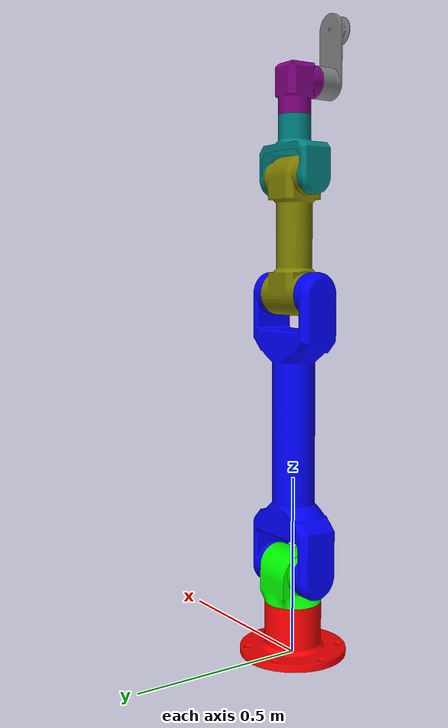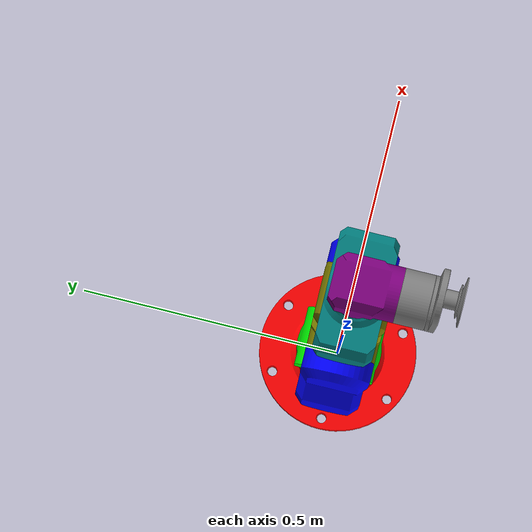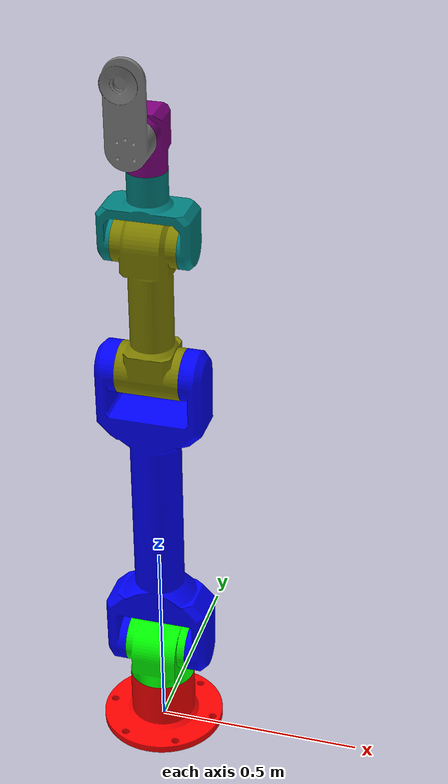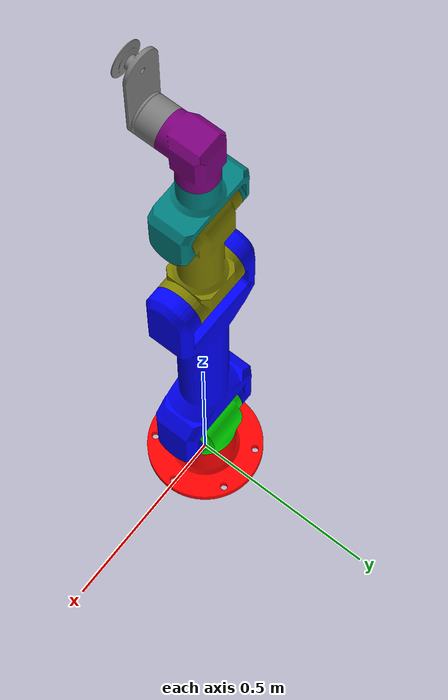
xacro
<?xml version="1.0"?>
<robot xmlns:xacro="http://www.ros.org/wiki/xacro" name="knickarm_6dof">
    <xacro:arg name="initial_positions_file" default="initial_positions.yaml" />

    <!-- Import knickarm_6dof urdf file -->
    <xacro:include filename="$(find robot_arm_6dof_assembly)/urdf/robot_arm_6dof_assembly.urdf" />

    <!-- Import control_xacro -->
    <xacro:include filename="knickarm_6dof.ros2_control.xacro" />

    <xacro:knickarm_6dof_ros2_control name="FakeSystem" initial_positions_file="$(arg initial_positions_file)"/>

</robot>

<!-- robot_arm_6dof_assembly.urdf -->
<robot name="knickarm_6dof">

  <!-- World Frame mit Z-up Korrektur für SolidWorks-Export -->
  <link name="world" />
  <joint name="world_to_base" type="fixed">
    <parent link="world" />
    <child link="base_link" />
    <origin xyz="0 0 0" rpy="0 0 0" />
  </joint>

  <link name="base_link">
    <inertial>
      <origin xyz="0.0 0.058842 0.0" rpy="0 0 0" />
      <mass value="10.856" />
      <inertia
        ixx="0.056123"  ixy="0.0"  ixz="0.0"
        iyy="0.064497"  iyz="0.0"
        izz="0.056123" />
    </inertial>
    <visual>
      <origin xyz="0 0 0" rpy="0 0 0" />
      <geometry>
        <mesh filename="package://robot_arm_6dof_assembly/meshes/base_link.STL" />
      </geometry>
      <material name="red">
        <color rgba="1 0 0 1" />
      </material>
    </visual>
    <collision>
      <origin xyz="0 0 0" rpy="0 0 0" />
      <geometry>
        <mesh filename="package://robot_arm_6dof_assembly/meshes/base_link.STL" />
      </geometry>
    </collision>
  </link>

  <link name="link_1">
    <inertial>
      <origin xyz="0.0 0.070484 0.0" rpy="0 0 0" />
      <mass value="7.3362" />
      <inertia
        ixx="0.023594"  ixy="0.0"  ixz="0.0"
        iyy="0.022891"  iyz="0.0"
        izz="0.022929" />
    </inertial>
    <visual>
      <origin xyz="0 0 0" rpy="0 0 0" />
      <geometry>
        <mesh filename="package://robot_arm_6dof_assembly/meshes/link_1.STL" />
      </geometry>
      <material name="green">
        <color rgba="0 1 0 1" />
      </material>
    </visual>
    <collision>
      <origin xyz="0 0 0" rpy="0 0 0" />
      <geometry>
        <mesh filename="package://robot_arm_6dof_assembly/meshes/link_1.STL" />
      </geometry>
    </collision>
  </link>

  <!-- Joint 1: Basis-Drehung -->
  <joint name="joint_1" type="revolute">
    <origin xyz="0 0 0.15" rpy="1.5708 0 1.5708" />
    <parent link="base_link" />
    <child link="link_1" />
    <axis xyz="0 1 0" />
    <limit lower="-3.1416" upper="3.1416" effort="300.0" velocity="1.571" />
    <dynamics damping="2.0" friction="1.0" />
  </joint>

  <link name="link_2">
    <inertial>
      <origin xyz="0.0 0.0 0.39" rpy="0 0 0" />
      <mass value="12.577" />
      <inertia
        ixx="1.0467"  ixy="0.0"  ixz="0.0"
        iyy="0.9886"  iyz="0.0"
        izz="0.094901" />
    </inertial>
    <visual>
      <origin xyz="0 0 0" rpy="0 0 0" />
      <geometry>
        <mesh filename="package://robot_arm_6dof_assembly/meshes/link_2.STL" />
      </geometry>
      <material name="blue">
        <color rgba="0 0 1 1" />
      </material>
    </visual>
    <collision>
      <origin xyz="0 0 0" rpy="0 0 0" />
      <geometry>
        <mesh filename="package://robot_arm_6dof_assembly/meshes/link_2.STL" />
      </geometry>
    </collision>
  </link>

  <!-- Joint 2: Schulter (war fixed im Export!) -->
  <joint name="joint_2" type="revolute">
    <origin xyz="0 0.09 0" rpy="1.5708 0 3.1416" />
    <parent link="link_1" />
    <child link="link_2" />
    <axis xyz="0 1 0" />
    <limit lower="-3.1416" upper="3.1416" effort="300.0" velocity="1.571" />
    <dynamics damping="2.0" friction="1.0" />
  </joint>

  <link name="link_3">
    <inertial>
      <origin xyz="-0.15486 0.0 0.0" rpy="0 0 0" />
      <mass value="5.0111" />
      <inertia
        ixx="0.017184"  ixy="0.0"  ixz="0.0"
        iyy="0.10451"   iyz="0.0"
        izz="0.10804" />
    </inertial>
    <visual>
      <origin xyz="0 0 0" rpy="0 0 0" />
      <geometry>
        <mesh filename="package://robot_arm_6dof_assembly/meshes/link_3.STL" />
      </geometry>
      <material name="olive">
        <color rgba="0.5 0.5 0 1" />
      </material>
    </visual>
    <collision>
      <origin xyz="0 0 0" rpy="0 0 0" />
      <geometry>
        <mesh filename="package://robot_arm_6dof_assembly/meshes/link_3.STL" />
      </geometry>
    </collision>
  </link>

  <!-- Joint 3: Ellbogen (war fixed im Export!) -->
  <joint name="joint_3" type="revolute">
    <origin xyz="0 0 0.78" rpy="0 1.5708 0" />
    <parent link="link_2" />
    <child link="link_3" />
    <axis xyz="0 1 0" />
    <limit lower="-3.1416" upper="3.1416" effort="150.0" velocity="1.571" />
    <dynamics damping="1.0" friction="0.5" />
  </joint>

  <link name="link_4">
    <inertial>
      <origin xyz="-0.062648 0.0 0.0" rpy="0 0 0" />
      <mass value="2.8147" />
      <inertia
        ixx="0.016383"  ixy="0.0"  ixz="0.0"
        iyy="0.010718"  iyz="0.0"
        izz="0.022619" />
    </inertial>
    <visual>
      <origin xyz="0 0 0" rpy="0 0 0" />
      <geometry>
        <mesh filename="package://robot_arm_6dof_assembly/meshes/link_4.STL" />
      </geometry>
      <material name="teal">
        <color rgba="0 0.5 0.5 1" />
      </material>
    </visual>
    <collision>
      <origin xyz="0 0 0" rpy="0 0 0" />
      <geometry>
        <mesh filename="package://robot_arm_6dof_assembly/meshes/link_4.STL" />
      </geometry>
    </collision>
  </link>

  <!-- Joint 4: Wrist 1 (war fixed im Export!) -->
  <joint name="joint_4" type="revolute">
    <origin xyz="-0.32 0 0" rpy="0 0 0" />
    <parent link="link_3" />
    <child link="link_4" />
    <axis xyz="0 1 0" />
    <limit lower="-3.1416" upper="3.1416" effort="50.0" velocity="3.142" />
    <dynamics damping="0.5" friction="0.2" />
  </joint>

  <link name="link_5">
    <inertial>
      <origin xyz="0.0 0.073741 -0.0073233" rpy="0 0 0" />
      <mass value="2.305" />
      <inertia
        ixx="0.0061277"  ixy="0.0"  ixz="0.0"
        iyy="0.003854"   iyz="0.00038988"
        izz="0.0054633" />
    </inertial>
    <visual>
      <origin xyz="0 0 0" rpy="0 0 0" />
      <geometry>
        <mesh filename="package://robot_arm_6dof_assembly/meshes/link_5.STL" />
      </geometry>
      <material name="purple">
        <color rgba="0.5 0 0.5 1" />
      </material>
    </visual>
    <collision>
      <origin xyz="0 0 0" rpy="0 0 0" />
      <geometry>
        <mesh filename="package://robot_arm_6dof_assembly/meshes/link_5.STL" />
      </geometry>
    </collision>
  </link>

  <!-- Joint 5: Wrist 2 (war fixed im Export!) -->
  <joint name="joint_5" type="revolute">
    <origin xyz="-0.17 0 0" rpy="3.1416 0 -1.5708" />
    <parent link="link_4" />
    <child link="link_5" />
    <axis xyz="0 1 0" />
    <limit lower="-3.1416" upper="3.1416" effort="30.0" velocity="3.142" />
    <dynamics damping="0.3" friction="0.1" />
  </joint>

  <link name="tool">
    <inertial>
      <origin xyz="0.0 -0.0089196 -0.031888" rpy="0 0 0" />
      <mass value="1.5393" />
      <inertia
        ixx="0.003164"   ixy="0.0"  ixz="0.0"
        iyy="0.0037725"  iyz="2.9223E-05"
        izz="0.0010376" />
    </inertial>
    <visual>
      <origin xyz="0 0 0" rpy="0 0 0" />
      <geometry>
        <mesh filename="package://robot_arm_6dof_assembly/meshes/tool.STL" />
      </geometry>
      <material name="grey">
        <color rgba="0.5 0.5 0.5 1" />
      </material>
    </visual>
    <collision>
      <origin xyz="0 0 0" rpy="0 0 0" />
      <geometry>
        <mesh filename="package://robot_arm_6dof_assembly/meshes/tool.STL" />
      </geometry>
    </collision>
  </link>

  <!-- Joint 6: Tool-Rotation (war fixed im Export!) -->
  <joint name="joint_6" type="revolute">
    <origin xyz="0 0.095 -0.115" rpy="-1.5708 0 3.1416" />
    <parent link="link_5" />
    <child link="tool" />
    <axis xyz="0 1 0" />
    <limit lower="-3.1416" upper="3.1416" effort="20.0" velocity="3.142" />
    <dynamics damping="0.2" friction="0.05" />
  </joint>

  <!-- Joint State Publisher Gazebo -->
  <gazebo>
    <plugin filename="gz-sim-joint-state-publisher-system" name="gz::sim::systems::JointStatePublisher"/>
  </gazebo>

  <!-- ROS2 control plugin Gazebo -->
  <gazebo>
    <plugin filename="libgz_ros2_control-system.so" name="gz_ros2_control::GazeboSimROS2ControlPlugin">
      <parameters>$(find robot_arm_6dof_assembly)/config/arm_controller_manager.yaml</parameters>
    </plugin>
  </gazebo>

  <!-- Hardware Interfaces for ROS2 control -->
  <ros2_control name="GazeboSimSystem" type="system">
    <hardware>
      <plugin>gz_ros2_control/GazeboSimSystem</plugin>
    </hardware>
    <joint name="joint_1">
      <command_interface name="position"><param name="min">-6.28</param><param name="max">6.28</param></command_interface>
      <state_interface name="position"><param name="initial_value">0.0</param></state_interface>
      <state_interface name="velocity"/>
    </joint>
    <joint name="joint_2">
      <command_interface name="position"><param name="min">-6.28</param><param name="max">6.28</param></command_interface>
      <state_interface name="position"><param name="initial_value">0.0</param></state_interface>
      <state_interface name="velocity"/>
    </joint>
    <joint name="joint_3">
      <command_interface name="position"><param name="min">-6.28</param><param name="max">6.28</param></command_interface>
      <state_interface name="position"><param name="initial_value">-1.5708</param></state_interface>
      <state_interface name="velocity"/>
    </joint>
    <joint name="joint_4">
      <command_interface name="position"><param name="min">-6.28</param><param name="max">6.28</param></command_interface>
      <state_interface name="position"><param name="initial_value">-1.5708</param></state_interface>
      <state_interface name="velocity"/>
    </joint>
    <joint name="joint_5">
      <command_interface name="position"><param name="min">-6.28</param><param name="max">6.28</param></command_interface>
      <state_interface name="position"><param name="initial_value">0.0</param></state_interface>
      <state_interface name="velocity"/>
    </joint>
    <joint name="joint_6">
      <command_interface name="position"><param name="min">-6.28</param><param name="max">6.28</param></command_interface>
      <state_interface name="position"><param name="initial_value">0.0</param></state_interface>
      <state_interface name="velocity"/>
    </joint>
  </ros2_control>
</robot>
